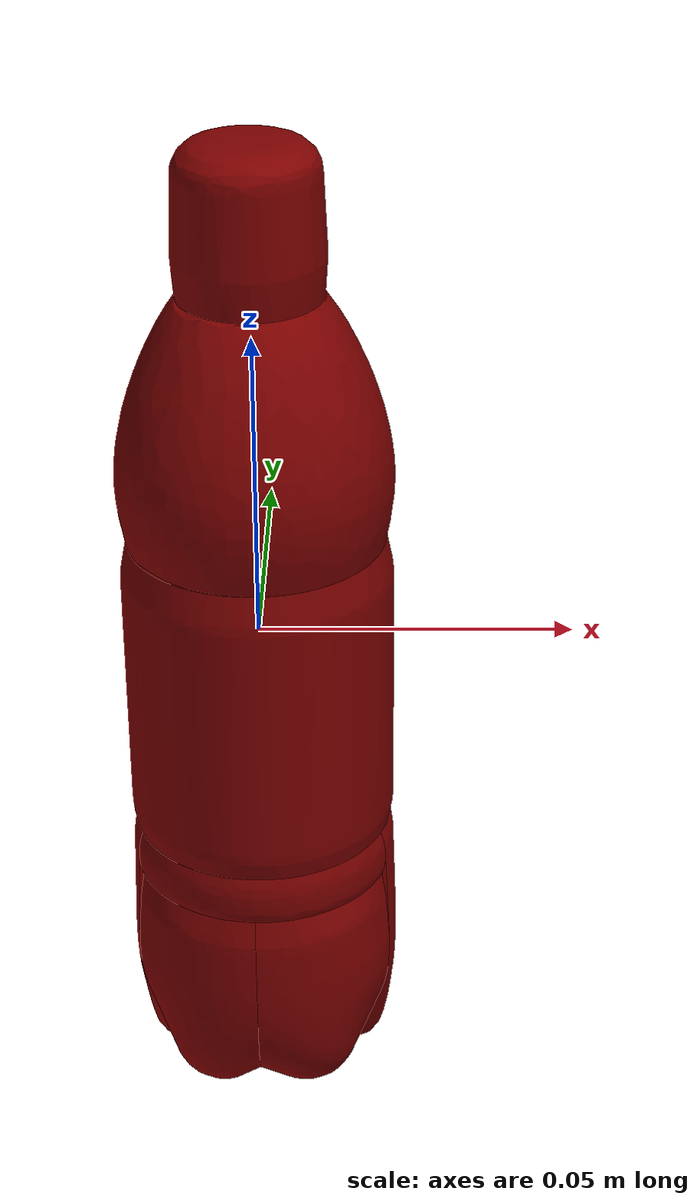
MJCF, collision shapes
<?xml version='1.0' encoding='utf-8'?>
<mujoco model="bottled_water_24">
  <asset>
    <mesh file="visual/model_normalized_0.obj" name="model_normalized_0_vis" scale="0.16 0.16 0.16" refquat="1.0 0.0 0.0 0.0" />
    <mesh file="visual/model_normalized_1.obj" name="model_normalized_1_vis" scale="0.16 0.16 0.16" refquat="1.0 0.0 0.0 0.0" />
    <material name="plastic" specular="0.5" shininess="0.160880429" rgba="0.001487 0.098912 0.800000 1.0" />
    <material name="transparent_plastic" specular="0.5" shininess="0.952576" rgba="0.800000 0.800000 0.800000 1.0" />
    <mesh file="collision/collision_mesh_collision_0.obj" name="bottled_collision_mesh_0" scale="0.16 0.16 0.16" refquat="1.0 0.0 0.0 0.0" />
    <mesh file="collision/collision_mesh_collision_1.obj" name="bottled_collision_mesh_1" scale="0.16 0.16 0.16" refquat="1.0 0.0 0.0 0.0" />
    <mesh file="collision/collision_mesh_collision_2.obj" name="bottled_collision_mesh_2" scale="0.16 0.16 0.16" refquat="1.0 0.0 0.0 0.0" />
    <mesh file="collision/collision_mesh_collision_3.obj" name="bottled_collision_mesh_3" scale="0.16 0.16 0.16" refquat="1.0 0.0 0.0 0.0" />
    <mesh file="collision/collision_mesh_collision_4.obj" name="bottled_collision_mesh_4" scale="0.16 0.16 0.16" refquat="1.0 0.0 0.0 0.0" />
    <mesh file="collision/collision_mesh_collision_5.obj" name="bottled_collision_mesh_5" scale="0.16 0.16 0.16" refquat="1.0 0.0 0.0 0.0" />
    <mesh file="collision/collision_mesh_collision_6.obj" name="bottled_collision_mesh_6" scale="0.16 0.16 0.16" refquat="1.0 0.0 0.0 0.0" />
    <mesh file="collision/collision_mesh_collision_7.obj" name="bottled_collision_mesh_7" scale="0.16 0.16 0.16" refquat="1.0 0.0 0.0 0.0" />
    <mesh file="collision/collision_mesh_collision_8.obj" name="bottled_collision_mesh_8" scale="0.16 0.16 0.16" refquat="1.0 0.0 0.0 0.0" />
    <mesh file="collision/collision_mesh_collision_9.obj" name="bottled_collision_mesh_9" scale="0.16 0.16 0.16" refquat="1.0 0.0 0.0 0.0" />
    </asset>
  <default>
    <default class="region">
      <geom group="1" conaffinity="0" contype="0" rgba="0 1 0 0" />
      </default>
    <default class="collision">
      <geom group="0" rgba="0.5 0 0 0.5" density="1000.0" />
      </default>
    </default>
  <worldbody>
    <body>
      <body name="object">
        <geom solimp="0.998 0.998 0.001" solref="0.001 1" density="100" friction="0.95 0.3 0.1" type="mesh" mesh="model_normalized_0_vis" conaffinity="0" contype="0" group="1" material="transparent_plastic" />
        <geom solimp="0.998 0.998 0.001" solref="0.001 1" density="100" friction="0.95 0.3 0.1" type="mesh" mesh="model_normalized_1_vis" conaffinity="0" contype="0" group="1" material="plastic" />
        <geom class="region" name="reg_bbox" type="box" pos="0.000292155999999999 -3.548559999999812e-05 -0.00040513439999999984" size="0.021155246399999994 0.021015193600000003 0.07923318399999998" />
        <geom mesh="bottled_collision_mesh_0" type="mesh" class="collision" />
        <geom mesh="bottled_collision_mesh_1" type="mesh" class="collision" />
        <geom mesh="bottled_collision_mesh_2" type="mesh" class="collision" />
        <geom mesh="bottled_collision_mesh_3" type="mesh" class="collision" />
        <geom mesh="bottled_collision_mesh_4" type="mesh" class="collision" />
        <geom mesh="bottled_collision_mesh_5" type="mesh" class="collision" />
        <geom mesh="bottled_collision_mesh_6" type="mesh" class="collision" />
        <geom mesh="bottled_collision_mesh_7" type="mesh" class="collision" />
        <geom mesh="bottled_collision_mesh_8" type="mesh" class="collision" />
        <geom mesh="bottled_collision_mesh_9" type="mesh" class="collision" />
        </body>
      </body>
    </worldbody>
  </mujoco>
